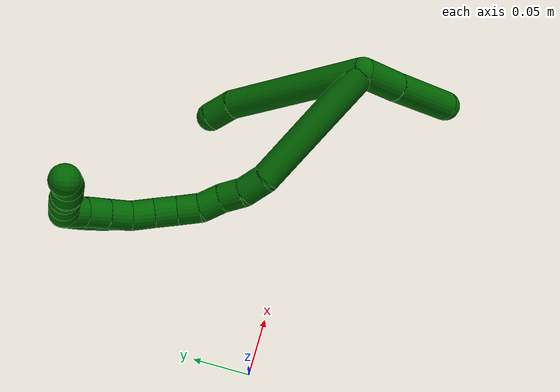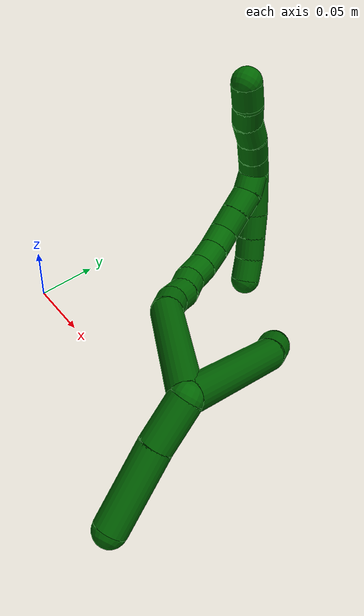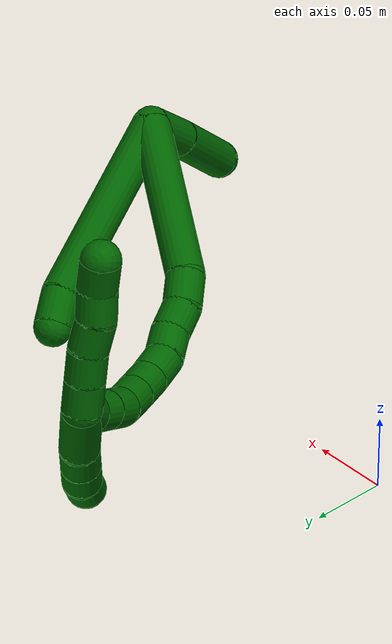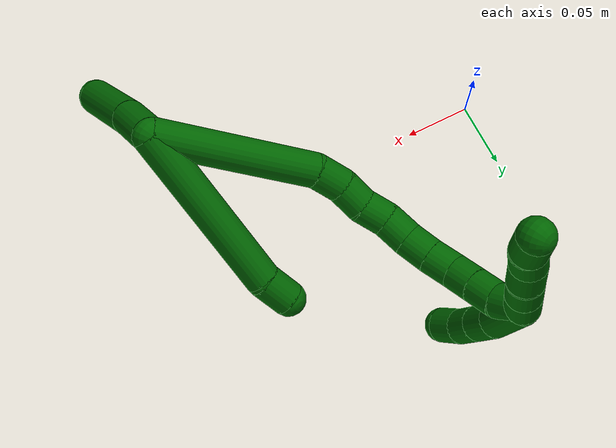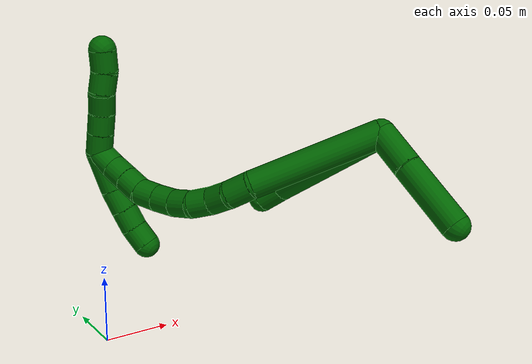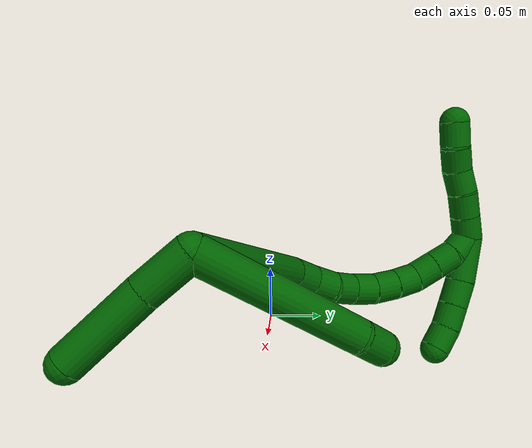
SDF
<sdf version="1.7">
 <world name="default">
  <model name="6">
   <static>0</static>
   <link name="6">
    <collision name="collision-cylinder-e_1_2_8">
     <pose>0.016337 0.050929 0.033734 -0.985772 0.261318 -0.140924</pose>
     <geometry><cylinder><radius>0.0125</radius><length>0.12647</length></cylinder></geometry>
     <surface>
      <friction><ode><mu>1.16</mu><mu2>1.16</mu2><slip1>0</slip1><slip2>0</slip2></ode></friction>
      <contact><ode><kp>1e+06</kp><kd>1</kd><max_vel>0</max_vel><min_depth>0.001</min_depth></ode></contact>
     </surface>
    </collision>
    <visual name="visual-cylinder-e_1_2_8">
     <pose>0.016337 0.050929 0.033734 -0.985772 0.261318 -0.140924</pose>
     <geometry><cylinder><radius>0.0125</radius><length>0.12647</length></cylinder></geometry>
     <material><ambient>0 0.392157 0.003922 1</ambient></material>
    </visual>
    <collision name="collision-cylinder-e_2_8_6">
     <pose>0.032847 0.112095 0.073265 -1.05551 0.014692 -0.008564</pose>
     <geometry><cylinder><radius>0.0125</radius><length>0.02353</length></cylinder></geometry>
     <surface>
      <friction><ode><mu>1.16</mu><mu2>1.16</mu2><slip1>0</slip1><slip2>0</slip2></ode></friction>
      <contact><ode><kp>1e+06</kp><kd>1</kd><max_vel>0</max_vel><min_depth>0.001</min_depth></ode></contact>
     </surface>
    </collision>
    <visual name="visual-cylinder-e_2_8_6">
     <pose>0.032847 0.112095 0.073265 -1.05551 0.014692 -0.008564</pose>
     <geometry><cylinder><radius>0.0125</radius><length>0.02353</length></cylinder></geometry>
     <material><ambient>0 0.392157 0.003922 1</ambient></material>
    </visual>
    <collision name="collision-cylinder-e_1_2_9">
     <pose>-0.002124 0.005068 -0.017887 -2.86547 -0.113761 0.777869</pose>
     <geometry><cylinder><radius>0.0125</radius><length>0.037424</length></cylinder></geometry>
     <surface>
      <friction><ode><mu>1.16</mu><mu2>1.16</mu2><slip1>0</slip1><slip2>0</slip2></ode></friction>
      <contact><ode><kp>1e+06</kp><kd>1</kd><max_vel>0</max_vel><min_depth>0.001</min_depth></ode></contact>
     </surface>
    </collision>
    <visual name="visual-cylinder-e_1_2_9">
     <pose>-0.002124 0.005068 -0.017887 -2.86547 -0.113761 0.777869</pose>
     <geometry><cylinder><radius>0.0125</radius><length>0.037424</length></cylinder></geometry>
     <material><ambient>0 0.392157 0.003922 1</ambient></material>
    </visual>
    <collision name="collision-cylinder-e_2_9_5">
     <pose>-0.00568 0.019056 -0.065729 -2.85222 -0.045791 0.311776</pose>
     <geometry><cylinder><radius>0.0125</radius><length>0.062576</length></cylinder></geometry>
     <surface>
      <friction><ode><mu>1.16</mu><mu2>1.16</mu2><slip1>0</slip1><slip2>0</slip2></ode></friction>
      <contact><ode><kp>1e+06</kp><kd>1</kd><max_vel>0</max_vel><min_depth>0.001</min_depth></ode></contact>
     </surface>
    </collision>
    <visual name="visual-cylinder-e_2_9_5">
     <pose>-0.00568 0.019056 -0.065729 -2.85222 -0.045791 0.311776</pose>
     <geometry><cylinder><radius>0.0125</radius><length>0.062576</length></cylinder></geometry>
     <material><ambient>0 0.392157 0.003922 1</ambient></material>
    </visual>
    <collision name="collision-cylinder-e_1_2_10">
     <pose>-0.024453 0.044425 0.029875 -0.978782 -0.42846 0.230728</pose>
     <geometry><cylinder><radius>0.0125</radius><length>0.117713</length></cylinder></geometry>
     <surface>
      <friction><ode><mu>1.16</mu><mu2>1.16</mu2><slip1>0</slip1><slip2>0</slip2></ode></friction>
      <contact><ode><kp>1e+06</kp><kd>1</kd><max_vel>0</max_vel><min_depth>0.001</min_depth></ode></contact>
     </surface>
    </collision>
    <visual name="visual-cylinder-e_1_2_10">
     <pose>-0.024453 0.044425 0.029875 -0.978782 -0.42846 0.230728</pose>
     <geometry><cylinder><radius>0.0125</radius><length>0.117713</length></cylinder></geometry>
     <material><ambient>0 0.392157 0.003922 1</ambient></material>
    </visual>
    <collision name="collision-cylinder-e_2_10_11">
     <pose>-0.050321 0.097992 0.065941 -0.975546 -0.127444 0.067679</pose>
     <geometry><cylinder><radius>0.0125</radius><length>0.022262</length></cylinder></geometry>
     <surface>
      <friction><ode><mu>1.16</mu><mu2>1.16</mu2><slip1>0</slip1><slip2>0</slip2></ode></friction>
      <contact><ode><kp>1e+06</kp><kd>1</kd><max_vel>0</max_vel><min_depth>0.001</min_depth></ode></contact>
     </surface>
    </collision>
    <visual name="visual-cylinder-e_2_10_11">
     <pose>-0.050321 0.097992 0.065941 -0.975546 -0.127444 0.067679</pose>
     <geometry><cylinder><radius>0.0125</radius><length>0.022262</length></cylinder></geometry>
     <material><ambient>0 0.392157 0.003922 1</ambient></material>
    </visual>
    <collision name="collision-cylinder-e_3_11_12">
     <pose>-0.050412 0.114642 0.078621 -0.857948 0.132638 -0.060737</pose>
     <geometry><cylinder><radius>0.0125</radius><length>0.020023</length></cylinder></geometry>
     <surface>
      <friction><ode><mu>1.16</mu><mu2>1.16</mu2><slip1>0</slip1><slip2>0</slip2></ode></friction>
      <contact><ode><kp>1e+06</kp><kd>1</kd><max_vel>0</max_vel><min_depth>0.001</min_depth></ode></contact>
     </surface>
    </collision>
    <visual name="visual-cylinder-e_3_11_12">
     <pose>-0.050412 0.114642 0.078621 -0.857948 0.132638 -0.060737</pose>
     <geometry><cylinder><radius>0.0125</radius><length>0.020023</length></cylinder></geometry>
     <material><ambient>0 0.392157 0.003922 1</ambient></material>
    </visual>
    <collision name="collision-cylinder-e_4_12_13">
     <pose>-0.050108 0.128961 0.092361 -0.754304 -0.102196 0.040511</pose>
     <geometry><cylinder><radius>0.0125</radius><length>0.020002</length></cylinder></geometry>
     <surface>
      <friction><ode><mu>1.16</mu><mu2>1.16</mu2><slip1>0</slip1><slip2>0</slip2></ode></friction>
      <contact><ode><kp>1e+06</kp><kd>1</kd><max_vel>0</max_vel><min_depth>0.001</min_depth></ode></contact>
     </surface>
    </collision>
    <visual name="visual-cylinder-e_4_12_13">
     <pose>-0.050108 0.128961 0.092361 -0.754304 -0.102196 0.040511</pose>
     <geometry><cylinder><radius>0.0125</radius><length>0.020002</length></cylinder></geometry>
     <material><ambient>0 0.392157 0.003922 1</ambient></material>
    </visual>
    <collision name="collision-cylinder-e_5_13_14">
     <pose>-0.049744 0.140949 0.108056 -0.549843 0.138839 -0.039219</pose>
     <geometry><cylinder><radius>0.0125</radius><length>0.02</length></cylinder></geometry>
     <surface>
      <friction><ode><mu>1.16</mu><mu2>1.16</mu2><slip1>0</slip1><slip2>0</slip2></ode></friction>
      <contact><ode><kp>1e+06</kp><kd>1</kd><max_vel>0</max_vel><min_depth>0.001</min_depth></ode></contact>
     </surface>
    </collision>
    <visual name="visual-cylinder-e_5_13_14">
     <pose>-0.049744 0.140949 0.108056 -0.549843 0.138839 -0.039219</pose>
     <geometry><cylinder><radius>0.0125</radius><length>0.02</length></cylinder></geometry>
     <material><ambient>0 0.392157 0.003922 1</ambient></material>
    </visual>
    <collision name="collision-cylinder-e_6_14_15">
     <pose>-0.047732 0.149731 0.125806 -0.369691 0.062823 -0.01175</pose>
     <geometry><cylinder><radius>0.0125</radius><length>0.02</length></cylinder></geometry>
     <surface>
      <friction><ode><mu>1.16</mu><mu2>1.16</mu2><slip1>0</slip1><slip2>0</slip2></ode></friction>
      <contact><ode><kp>1e+06</kp><kd>1</kd><max_vel>0</max_vel><min_depth>0.001</min_depth></ode></contact>
     </surface>
    </collision>
    <visual name="visual-cylinder-e_6_14_15">
     <pose>-0.047732 0.149731 0.125806 -0.369691 0.062823 -0.01175</pose>
     <geometry><cylinder><radius>0.0125</radius><length>0.02</length></cylinder></geometry>
     <material><ambient>0 0.392157 0.003922 1</ambient></material>
    </visual>
    <collision name="collision-cylinder-e_7_15_16">
     <pose>-0.047032 0.156224 0.144686 -0.292876 0.007234 -0.001067</pose>
     <geometry><cylinder><radius>0.0125</radius><length>0.02</length></cylinder></geometry>
     <surface>
      <friction><ode><mu>1.16</mu><mu2>1.16</mu2><slip1>0</slip1><slip2>0</slip2></ode></friction>
      <contact><ode><kp>1e+06</kp><kd>1</kd><max_vel>0</max_vel><min_depth>0.001</min_depth></ode></contact>
     </surface>
    </collision>
    <visual name="visual-cylinder-e_7_15_16">
     <pose>-0.047032 0.156224 0.144686 -0.292876 0.007234 -0.001067</pose>
     <geometry><cylinder><radius>0.0125</radius><length>0.02</length></cylinder></geometry>
     <material><ambient>0 0.392157 0.003922 1</ambient></material>
    </visual>
    <collision name="collision-cylinder-e_8_16_17">
     <pose>-0.046334 0.158781 0.164235 0.033102 0.06265 0.001037</pose>
     <geometry><cylinder><radius>0.0125</radius><length>0.02</length></cylinder></geometry>
     <surface>
      <friction><ode><mu>1.16</mu><mu2>1.16</mu2><slip1>0</slip1><slip2>0</slip2></ode></friction>
      <contact><ode><kp>1e+06</kp><kd>1</kd><max_vel>0</max_vel><min_depth>0.001</min_depth></ode></contact>
     </surface>
    </collision>
    <visual name="visual-cylinder-e_8_16_17">
     <pose>-0.046334 0.158781 0.164235 0.033102 0.06265 0.001037</pose>
     <geometry><cylinder><radius>0.0125</radius><length>0.02</length></cylinder></geometry>
     <material><ambient>0 0.392157 0.003922 1</ambient></material>
    </visual>
    <collision name="collision-cylinder-e_9_17_18">
     <pose>-0.045044 0.158176 0.184184 0.027493 0.066446 0.000914</pose>
     <geometry><cylinder><radius>0.0125</radius><length>0.02</length></cylinder></geometry>
     <surface>
      <friction><ode><mu>1.16</mu><mu2>1.16</mu2><slip1>0</slip1><slip2>0</slip2></ode></friction>
      <contact><ode><kp>1e+06</kp><kd>1</kd><max_vel>0</max_vel><min_depth>0.001</min_depth></ode></contact>
     </surface>
    </collision>
    <visual name="visual-cylinder-e_9_17_18">
     <pose>-0.045044 0.158176 0.184184 0.027493 0.066446 0.000914</pose>
     <geometry><cylinder><radius>0.0125</radius><length>0.02</length></cylinder></geometry>
     <material><ambient>0 0.392157 0.003922 1</ambient></material>
    </visual>
    <collision name="collision-cylinder-e_10_18_1">
     <pose>-0.046089 0.155938 0.203813 0.200701 -0.171767 -0.017337</pose>
     <geometry><cylinder><radius>0.0125</radius><length>0.02</length></cylinder></geometry>
     <surface>
      <friction><ode><mu>1.16</mu><mu2>1.16</mu2><slip1>0</slip1><slip2>0</slip2></ode></friction>
      <contact><ode><kp>1e+06</kp><kd>1</kd><max_vel>0</max_vel><min_depth>0.001</min_depth></ode></contact>
     </surface>
    </collision>
    <visual name="visual-cylinder-e_10_18_1">
     <pose>-0.046089 0.155938 0.203813 0.200701 -0.171767 -0.017337</pose>
     <geometry><cylinder><radius>0.0125</radius><length>0.02</length></cylinder></geometry>
     <material><ambient>0 0.392157 0.003922 1</ambient></material>
    </visual>
    <collision name="collision-cylinder-e_1_1_19">
     <pose>-0.050053 0.144598 0.216116 1.29552 -0.227435 -0.172413</pose>
     <geometry><cylinder><radius>0.0125</radius><length>0.02</length></cylinder></geometry>
     <surface>
      <friction><ode><mu>1.16</mu><mu2>1.16</mu2><slip1>0</slip1><slip2>0</slip2></ode></friction>
      <contact><ode><kp>1e+06</kp><kd>1</kd><max_vel>0</max_vel><min_depth>0.001</min_depth></ode></contact>
     </surface>
    </collision>
    <visual name="visual-cylinder-e_1_1_19">
     <pose>-0.050053 0.144598 0.216116 1.29552 -0.227435 -0.172413</pose>
     <geometry><cylinder><radius>0.0125</radius><length>0.02</length></cylinder></geometry>
     <material><ambient>0 0.392157 0.003922 1</ambient></material>
    </visual>
    <collision name="collision-cylinder-e_2_19_20">
     <pose>-0.054569 0.125843 0.221397 1.29715 -0.228097 -0.173207</pose>
     <geometry><cylinder><radius>0.0125</radius><length>0.02</length></cylinder></geometry>
     <surface>
      <friction><ode><mu>1.16</mu><mu2>1.16</mu2><slip1>0</slip1><slip2>0</slip2></ode></friction>
      <contact><ode><kp>1e+06</kp><kd>1</kd><max_vel>0</max_vel><min_depth>0.001</min_depth></ode></contact>
     </surface>
    </collision>
    <visual name="visual-cylinder-e_2_19_20">
     <pose>-0.054569 0.125843 0.221397 1.29715 -0.228097 -0.173207</pose>
     <geometry><cylinder><radius>0.0125</radius><length>0.02</length></cylinder></geometry>
     <material><ambient>0 0.392157 0.003922 1</ambient></material>
    </visual>
    <collision name="collision-cylinder-e_3_20_21">
     <pose>-0.060451 0.107387 0.226146 1.3417 -0.370532 -0.295314</pose>
     <geometry><cylinder><radius>0.0125</radius><length>0.02</length></cylinder></geometry>
     <surface>
      <friction><ode><mu>1.16</mu><mu2>1.16</mu2><slip1>0</slip1><slip2>0</slip2></ode></friction>
      <contact><ode><kp>1e+06</kp><kd>1</kd><max_vel>0</max_vel><min_depth>0.001</min_depth></ode></contact>
     </surface>
    </collision>
    <visual name="visual-cylinder-e_3_20_21">
     <pose>-0.060451 0.107387 0.226146 1.3417 -0.370532 -0.295314</pose>
     <geometry><cylinder><radius>0.0125</radius><length>0.02</length></cylinder></geometry>
     <material><ambient>0 0.392157 0.003922 1</ambient></material>
    </visual>
    <collision name="collision-cylinder-e_4_21_22">
     <pose>-0.065551 0.088741 0.230765 1.31499 -0.148392 -0.114659</pose>
     <geometry><cylinder><radius>0.0125</radius><length>0.02</length></cylinder></geometry>
     <surface>
      <friction><ode><mu>1.16</mu><mu2>1.16</mu2><slip1>0</slip1><slip2>0</slip2></ode></friction>
      <contact><ode><kp>1e+06</kp><kd>1</kd><max_vel>0</max_vel><min_depth>0.001</min_depth></ode></contact>
     </surface>
    </collision>
    <visual name="visual-cylinder-e_4_21_22">
     <pose>-0.065551 0.088741 0.230765 1.31499 -0.148392 -0.114659</pose>
     <geometry><cylinder><radius>0.0125</radius><length>0.02</length></cylinder></geometry>
     <material><ambient>0 0.392157 0.003922 1</ambient></material>
    </visual>
    <collision name="collision-cylinder-e_5_22_4">
     <pose>-0.070023 0.070492 0.237229 1.14268 -0.304018 -0.196327</pose>
     <geometry><cylinder><radius>0.0125</radius><length>0.02</length></cylinder></geometry>
     <surface>
      <friction><ode><mu>1.16</mu><mu2>1.16</mu2><slip1>0</slip1><slip2>0</slip2></ode></friction>
      <contact><ode><kp>1e+06</kp><kd>1</kd><max_vel>0</max_vel><min_depth>0.001</min_depth></ode></contact>
     </surface>
    </collision>
    <visual name="visual-cylinder-e_5_22_4">
     <pose>-0.070023 0.070492 0.237229 1.14268 -0.304018 -0.196327</pose>
     <geometry><cylinder><radius>0.0125</radius><length>0.02</length></cylinder></geometry>
     <material><ambient>0 0.392157 0.003922 1</ambient></material>
    </visual>
    <collision name="collision-cylinder-e_1_1_23">
     <pose>-0.04139 0.16706 0.201327 -2.31872 0.34469 -0.759178</pose>
     <geometry><cylinder><radius>0.0125</radius><length>0.037932</length></cylinder></geometry>
     <surface>
      <friction><ode><mu>1.16</mu><mu2>1.16</mu2><slip1>0</slip1><slip2>0</slip2></ode></friction>
      <contact><ode><kp>1e+06</kp><kd>1</kd><max_vel>0</max_vel><min_depth>0.001</min_depth></ode></contact>
     </surface>
    </collision>
    <visual name="visual-cylinder-e_1_1_23">
     <pose>-0.04139 0.16706 0.201327 -2.31872 0.34469 -0.759178</pose>
     <geometry><cylinder><radius>0.0125</radius><length>0.037932</length></cylinder></geometry>
     <material><ambient>0 0.392157 0.003922 1</ambient></material>
    </visual>
    <collision name="collision-cylinder-e_2_23_24">
     <pose>-0.031665 0.186556 0.181017 -2.47632 0.309057 -0.847192</pose>
     <geometry><cylinder><radius>0.0125</radius><length>0.021802</length></cylinder></geometry>
     <surface>
      <friction><ode><mu>1.16</mu><mu2>1.16</mu2><slip1>0</slip1><slip2>0</slip2></ode></friction>
      <contact><ode><kp>1e+06</kp><kd>1</kd><max_vel>0</max_vel><min_depth>0.001</min_depth></ode></contact>
     </surface>
    </collision>
    <visual name="visual-cylinder-e_2_23_24">
     <pose>-0.031665 0.186556 0.181017 -2.47632 0.309057 -0.847192</pose>
     <geometry><cylinder><radius>0.0125</radius><length>0.021802</length></cylinder></geometry>
     <material><ambient>0 0.392157 0.003922 1</ambient></material>
    </visual>
    <collision name="collision-cylinder-e_3_24_25">
     <pose>-0.025205 0.198739 0.165191 -2.49552 0.316858 -0.89058</pose>
     <geometry><cylinder><radius>0.0125</radius><length>0.020182</length></cylinder></geometry>
     <surface>
      <friction><ode><mu>1.16</mu><mu2>1.16</mu2><slip1>0</slip1><slip2>0</slip2></ode></friction>
      <contact><ode><kp>1e+06</kp><kd>1</kd><max_vel>0</max_vel><min_depth>0.001</min_depth></ode></contact>
     </surface>
    </collision>
    <visual name="visual-cylinder-e_3_24_25">
     <pose>-0.025205 0.198739 0.165191 -2.49552 0.316858 -0.89058</pose>
     <geometry><cylinder><radius>0.0125</radius><length>0.020182</length></cylinder></geometry>
     <material><ambient>0 0.392157 0.003922 1</ambient></material>
    </visual>
    <collision name="collision-cylinder-e_4_25_3">
     <pose>-0.019439 0.208514 0.148706 -2.71602 0.264166 -1.10263</pose>
     <geometry><cylinder><radius>0.0125</radius><length>0.020084</length></cylinder></geometry>
     <surface>
      <friction><ode><mu>1.16</mu><mu2>1.16</mu2><slip1>0</slip1><slip2>0</slip2></ode></friction>
      <contact><ode><kp>1e+06</kp><kd>1</kd><max_vel>0</max_vel><min_depth>0.001</min_depth></ode></contact>
     </surface>
    </collision>
    <visual name="visual-cylinder-e_4_25_3">
     <pose>-0.019439 0.208514 0.148706 -2.71602 0.264166 -1.10263</pose>
     <geometry><cylinder><radius>0.0125</radius><length>0.020084</length></cylinder></geometry>
     <material><ambient>0 0.392157 0.003922 1</ambient></material>
    </visual>
    <collision name="collision-sphere-3">
     <pose>-0.016817 0.212516 0.139877 0 -0 0</pose>
     <geometry><sphere><radius>0.0125</radius></sphere></geometry>
     <surface>
      <friction><ode><mu>1.16</mu><mu2>1.16</mu2><slip1>0</slip1><slip2>0</slip2></ode></friction>
      <contact><ode><kp>1e+06</kp><kd>1</kd><max_vel>0</max_vel><min_depth>0.001</min_depth></ode></contact>
     </surface>
    </collision>
    <visual name="visual-sphere-3">
     <pose>-0.016817 0.212516 0.139877 0 -0 0</pose>
     <geometry><sphere><radius>0.0125</radius></sphere></geometry>
     <material><ambient>0 0.392157 0.003922 1</ambient></material>
    </visual>
    <collision name="collision-sphere-25">
     <pose>-0.022061 0.204512 0.157535 0 -0 0</pose>
     <geometry><sphere><radius>0.0125</radius></sphere></geometry>
     <surface>
      <friction><ode><mu>1.16</mu><mu2>1.16</mu2><slip1>0</slip1><slip2>0</slip2></ode></friction>
      <contact><ode><kp>1e+06</kp><kd>1</kd><max_vel>0</max_vel><min_depth>0.001</min_depth></ode></contact>
     </surface>
    </collision>
    <visual name="visual-sphere-25">
     <pose>-0.022061 0.204512 0.157535 0 -0 0</pose>
     <geometry><sphere><radius>0.0125</radius></sphere></geometry>
     <material><ambient>0 0.392157 0.003922 1</ambient></material>
    </visual>
    <collision name="collision-sphere-24">
     <pose>-0.028349 0.192966 0.172847 0 -0 0</pose>
     <geometry><sphere><radius>0.0125</radius></sphere></geometry>
     <surface>
      <friction><ode><mu>1.16</mu><mu2>1.16</mu2><slip1>0</slip1><slip2>0</slip2></ode></friction>
      <contact><ode><kp>1e+06</kp><kd>1</kd><max_vel>0</max_vel><min_depth>0.001</min_depth></ode></contact>
     </surface>
    </collision>
    <visual name="visual-sphere-24">
     <pose>-0.028349 0.192966 0.172847 0 -0 0</pose>
     <geometry><sphere><radius>0.0125</radius></sphere></geometry>
     <material><ambient>0 0.392157 0.003922 1</ambient></material>
    </visual>
    <collision name="collision-sphere-23">
     <pose>-0.034981 0.180146 0.189187 0 -0 0</pose>
     <geometry><sphere><radius>0.0125</radius></sphere></geometry>
     <surface>
      <friction><ode><mu>1.16</mu><mu2>1.16</mu2><slip1>0</slip1><slip2>0</slip2></ode></friction>
      <contact><ode><kp>1e+06</kp><kd>1</kd><max_vel>0</max_vel><min_depth>0.001</min_depth></ode></contact>
     </surface>
    </collision>
    <visual name="visual-sphere-23">
     <pose>-0.034981 0.180146 0.189187 0 -0 0</pose>
     <geometry><sphere><radius>0.0125</radius></sphere></geometry>
     <material><ambient>0 0.392157 0.003922 1</ambient></material>
    </visual>
    <collision name="collision-sphere-4">
     <pose>-0.073017 0.061812 0.24119 0 -0 0</pose>
     <geometry><sphere><radius>0.0125</radius></sphere></geometry>
     <surface>
      <friction><ode><mu>1.16</mu><mu2>1.16</mu2><slip1>0</slip1><slip2>0</slip2></ode></friction>
      <contact><ode><kp>1e+06</kp><kd>1</kd><max_vel>0</max_vel><min_depth>0.001</min_depth></ode></contact>
     </surface>
    </collision>
    <visual name="visual-sphere-4">
     <pose>-0.073017 0.061812 0.24119 0 -0 0</pose>
     <geometry><sphere><radius>0.0125</radius></sphere></geometry>
     <material><ambient>0 0.392157 0.003922 1</ambient></material>
    </visual>
    <collision name="collision-sphere-22">
     <pose>-0.06703 0.079173 0.233268 0 -0 0</pose>
     <geometry><sphere><radius>0.0125</radius></sphere></geometry>
     <surface>
      <friction><ode><mu>1.16</mu><mu2>1.16</mu2><slip1>0</slip1><slip2>0</slip2></ode></friction>
      <contact><ode><kp>1e+06</kp><kd>1</kd><max_vel>0</max_vel><min_depth>0.001</min_depth></ode></contact>
     </surface>
    </collision>
    <visual name="visual-sphere-22">
     <pose>-0.06703 0.079173 0.233268 0 -0 0</pose>
     <geometry><sphere><radius>0.0125</radius></sphere></geometry>
     <material><ambient>0 0.392157 0.003922 1</ambient></material>
    </visual>
    <collision name="collision-sphere-21">
     <pose>-0.064073 0.098309 0.228263 0 -0 0</pose>
     <geometry><sphere><radius>0.0125</radius></sphere></geometry>
     <surface>
      <friction><ode><mu>1.16</mu><mu2>1.16</mu2><slip1>0</slip1><slip2>0</slip2></ode></friction>
      <contact><ode><kp>1e+06</kp><kd>1</kd><max_vel>0</max_vel><min_depth>0.001</min_depth></ode></contact>
     </surface>
    </collision>
    <visual name="visual-sphere-21">
     <pose>-0.064073 0.098309 0.228263 0 -0 0</pose>
     <geometry><sphere><radius>0.0125</radius></sphere></geometry>
     <material><ambient>0 0.392157 0.003922 1</ambient></material>
    </visual>
    <collision name="collision-sphere-20">
     <pose>-0.05683 0.116465 0.224029 0 -0 0</pose>
     <geometry><sphere><radius>0.0125</radius></sphere></geometry>
     <surface>
      <friction><ode><mu>1.16</mu><mu2>1.16</mu2><slip1>0</slip1><slip2>0</slip2></ode></friction>
      <contact><ode><kp>1e+06</kp><kd>1</kd><max_vel>0</max_vel><min_depth>0.001</min_depth></ode></contact>
     </surface>
    </collision>
    <visual name="visual-sphere-20">
     <pose>-0.05683 0.116465 0.224029 0 -0 0</pose>
     <geometry><sphere><radius>0.0125</radius></sphere></geometry>
     <material><ambient>0 0.392157 0.003922 1</ambient></material>
    </visual>
    <collision name="collision-sphere-10">
     <pose>-0.048906 0.08885 0.05975 0 -0 0</pose>
     <geometry><sphere><radius>0.0125</radius></sphere></geometry>
     <surface>
      <friction><ode><mu>1.16</mu><mu2>1.16</mu2><slip1>0</slip1><slip2>0</slip2></ode></friction>
      <contact><ode><kp>1e+06</kp><kd>1</kd><max_vel>0</max_vel><min_depth>0.001</min_depth></ode></contact>
     </surface>
    </collision>
    <visual name="visual-sphere-10">
     <pose>-0.048906 0.08885 0.05975 0 -0 0</pose>
     <geometry><sphere><radius>0.0125</radius></sphere></geometry>
     <material><ambient>0 0.392157 0.003922 1</ambient></material>
    </visual>
    <collision name="collision-sphere-5">
     <pose>-0.007113 0.027975 -0.095685 0 -0 0</pose>
     <geometry><sphere><radius>0.0125</radius></sphere></geometry>
     <surface>
      <friction><ode><mu>1.16</mu><mu2>1.16</mu2><slip1>0</slip1><slip2>0</slip2></ode></friction>
      <contact><ode><kp>1e+06</kp><kd>1</kd><max_vel>0</max_vel><min_depth>0.001</min_depth></ode></contact>
     </surface>
    </collision>
    <visual name="visual-sphere-5">
     <pose>-0.007113 0.027975 -0.095685 0 -0 0</pose>
     <geometry><sphere><radius>0.0125</radius></sphere></geometry>
     <material><ambient>0 0.392157 0.003922 1</ambient></material>
    </visual>
    <collision name="collision-sphere-6">
     <pose>0.03302 0.122331 0.079062 0 -0 0</pose>
     <geometry><sphere><radius>0.0125</radius></sphere></geometry>
     <surface>
      <friction><ode><mu>1.16</mu><mu2>1.16</mu2><slip1>0</slip1><slip2>0</slip2></ode></friction>
      <contact><ode><kp>1e+06</kp><kd>1</kd><max_vel>0</max_vel><min_depth>0.001</min_depth></ode></contact>
     </surface>
    </collision>
    <visual name="visual-sphere-6">
     <pose>0.03302 0.122331 0.079062 0 -0 0</pose>
     <geometry><sphere><radius>0.0125</radius></sphere></geometry>
     <material><ambient>0 0.392157 0.003922 1</ambient></material>
    </visual>
    <collision name="collision-sphere-9">
     <pose>-0.004248 0.010137 -0.035773 0 -0 0</pose>
     <geometry><sphere><radius>0.0125</radius></sphere></geometry>
     <surface>
      <friction><ode><mu>1.16</mu><mu2>1.16</mu2><slip1>0</slip1><slip2>0</slip2></ode></friction>
      <contact><ode><kp>1e+06</kp><kd>1</kd><max_vel>0</max_vel><min_depth>0.001</min_depth></ode></contact>
     </surface>
    </collision>
    <visual name="visual-sphere-9">
     <pose>-0.004248 0.010137 -0.035773 0 -0 0</pose>
     <geometry><sphere><radius>0.0125</radius></sphere></geometry>
     <material><ambient>0 0.392157 0.003922 1</ambient></material>
    </visual>
    <collision name="collision-sphere-2">
     <geometry><sphere><radius>0.0125</radius></sphere></geometry>
     <surface>
      <friction><ode><mu>1.16</mu><mu2>1.16</mu2><slip1>0</slip1><slip2>0</slip2></ode></friction>
      <contact><ode><kp>1e+06</kp><kd>1</kd><max_vel>0</max_vel><min_depth>0.001</min_depth></ode></contact>
     </surface>
    </collision>
    <visual name="visual-sphere-2">
     <geometry><sphere><radius>0.0125</radius></sphere></geometry>
     <material><ambient>0 0.392157 0.003922 1</ambient></material>
    </visual>
    <collision name="collision-sphere-19">
     <pose>-0.052308 0.135222 0.218764 0 -0 0</pose>
     <geometry><sphere><radius>0.0125</radius></sphere></geometry>
     <surface>
      <friction><ode><mu>1.16</mu><mu2>1.16</mu2><slip1>0</slip1><slip2>0</slip2></ode></friction>
      <contact><ode><kp>1e+06</kp><kd>1</kd><max_vel>0</max_vel><min_depth>0.001</min_depth></ode></contact>
     </surface>
    </collision>
    <visual name="visual-sphere-19">
     <pose>-0.052308 0.135222 0.218764 0 -0 0</pose>
     <geometry><sphere><radius>0.0125</radius></sphere></geometry>
     <material><ambient>0 0.392157 0.003922 1</ambient></material>
    </visual>
    <collision name="collision-sphere-8">
     <pose>0.032674 0.101858 0.067468 0 -0 0</pose>
     <geometry><sphere><radius>0.0125</radius></sphere></geometry>
     <surface>
      <friction><ode><mu>1.16</mu><mu2>1.16</mu2><slip1>0</slip1><slip2>0</slip2></ode></friction>
      <contact><ode><kp>1e+06</kp><kd>1</kd><max_vel>0</max_vel><min_depth>0.001</min_depth></ode></contact>
     </surface>
    </collision>
    <visual name="visual-sphere-8">
     <pose>0.032674 0.101858 0.067468 0 -0 0</pose>
     <geometry><sphere><radius>0.0125</radius></sphere></geometry>
     <material><ambient>0 0.392157 0.003922 1</ambient></material>
    </visual>
    <collision name="collision-sphere-11">
     <pose>-0.051736 0.107134 0.072132 0 -0 0</pose>
     <geometry><sphere><radius>0.0125</radius></sphere></geometry>
     <surface>
      <friction><ode><mu>1.16</mu><mu2>1.16</mu2><slip1>0</slip1><slip2>0</slip2></ode></friction>
      <contact><ode><kp>1e+06</kp><kd>1</kd><max_vel>0</max_vel><min_depth>0.001</min_depth></ode></contact>
     </surface>
    </collision>
    <visual name="visual-sphere-11">
     <pose>-0.051736 0.107134 0.072132 0 -0 0</pose>
     <geometry><sphere><radius>0.0125</radius></sphere></geometry>
     <material><ambient>0 0.392157 0.003922 1</ambient></material>
    </visual>
    <collision name="collision-sphere-12">
     <pose>-0.049088 0.122149 0.085111 0 -0 0</pose>
     <geometry><sphere><radius>0.0125</radius></sphere></geometry>
     <surface>
      <friction><ode><mu>1.16</mu><mu2>1.16</mu2><slip1>0</slip1><slip2>0</slip2></ode></friction>
      <contact><ode><kp>1e+06</kp><kd>1</kd><max_vel>0</max_vel><min_depth>0.001</min_depth></ode></contact>
     </surface>
    </collision>
    <visual name="visual-sphere-12">
     <pose>-0.049088 0.122149 0.085111 0 -0 0</pose>
     <geometry><sphere><radius>0.0125</radius></sphere></geometry>
     <material><ambient>0 0.392157 0.003922 1</ambient></material>
    </visual>
    <collision name="collision-sphere-13">
     <pose>-0.051128 0.135774 0.099611 0 -0 0</pose>
     <geometry><sphere><radius>0.0125</radius></sphere></geometry>
     <surface>
      <friction><ode><mu>1.16</mu><mu2>1.16</mu2><slip1>0</slip1><slip2>0</slip2></ode></friction>
      <contact><ode><kp>1e+06</kp><kd>1</kd><max_vel>0</max_vel><min_depth>0.001</min_depth></ode></contact>
     </surface>
    </collision>
    <visual name="visual-sphere-13">
     <pose>-0.051128 0.135774 0.099611 0 -0 0</pose>
     <geometry><sphere><radius>0.0125</radius></sphere></geometry>
     <material><ambient>0 0.392157 0.003922 1</ambient></material>
    </visual>
    <collision name="collision-sphere-14">
     <pose>-0.04836 0.146125 0.1165 0 -0 0</pose>
     <geometry><sphere><radius>0.0125</radius></sphere></geometry>
     <surface>
      <friction><ode><mu>1.16</mu><mu2>1.16</mu2><slip1>0</slip1><slip2>0</slip2></ode></friction>
      <contact><ode><kp>1e+06</kp><kd>1</kd><max_vel>0</max_vel><min_depth>0.001</min_depth></ode></contact>
     </surface>
    </collision>
    <visual name="visual-sphere-14">
     <pose>-0.04836 0.146125 0.1165 0 -0 0</pose>
     <geometry><sphere><radius>0.0125</radius></sphere></geometry>
     <material><ambient>0 0.392157 0.003922 1</ambient></material>
    </visual>
    <collision name="collision-sphere-15">
     <pose>-0.047105 0.153337 0.135112 0 -0 0</pose>
     <geometry><sphere><radius>0.0125</radius></sphere></geometry>
     <surface>
      <friction><ode><mu>1.16</mu><mu2>1.16</mu2><slip1>0</slip1><slip2>0</slip2></ode></friction>
      <contact><ode><kp>1e+06</kp><kd>1</kd><max_vel>0</max_vel><min_depth>0.001</min_depth></ode></contact>
     </surface>
    </collision>
    <visual name="visual-sphere-15">
     <pose>-0.047105 0.153337 0.135112 0 -0 0</pose>
     <geometry><sphere><radius>0.0125</radius></sphere></geometry>
     <material><ambient>0 0.392157 0.003922 1</ambient></material>
    </visual>
    <collision name="collision-sphere-16">
     <pose>-0.04696 0.159111 0.15426 0 -0 0</pose>
     <geometry><sphere><radius>0.0125</radius></sphere></geometry>
     <surface>
      <friction><ode><mu>1.16</mu><mu2>1.16</mu2><slip1>0</slip1><slip2>0</slip2></ode></friction>
      <contact><ode><kp>1e+06</kp><kd>1</kd><max_vel>0</max_vel><min_depth>0.001</min_depth></ode></contact>
     </surface>
    </collision>
    <visual name="visual-sphere-16">
     <pose>-0.04696 0.159111 0.15426 0 -0 0</pose>
     <geometry><sphere><radius>0.0125</radius></sphere></geometry>
     <material><ambient>0 0.392157 0.003922 1</ambient></material>
    </visual>
    <collision name="collision-sphere-17">
     <pose>-0.045708 0.15845 0.17421 0 -0 0</pose>
     <geometry><sphere><radius>0.0125</radius></sphere></geometry>
     <surface>
      <friction><ode><mu>1.16</mu><mu2>1.16</mu2><slip1>0</slip1><slip2>0</slip2></ode></friction>
      <contact><ode><kp>1e+06</kp><kd>1</kd><max_vel>0</max_vel><min_depth>0.001</min_depth></ode></contact>
     </surface>
    </collision>
    <visual name="visual-sphere-17">
     <pose>-0.045708 0.15845 0.17421 0 -0 0</pose>
     <geometry><sphere><radius>0.0125</radius></sphere></geometry>
     <material><ambient>0 0.392157 0.003922 1</ambient></material>
    </visual>
    <collision name="collision-sphere-18">
     <pose>-0.04438 0.157902 0.194158 0 -0 0</pose>
     <geometry><sphere><radius>0.0125</radius></sphere></geometry>
     <surface>
      <friction><ode><mu>1.16</mu><mu2>1.16</mu2><slip1>0</slip1><slip2>0</slip2></ode></friction>
      <contact><ode><kp>1e+06</kp><kd>1</kd><max_vel>0</max_vel><min_depth>0.001</min_depth></ode></contact>
     </surface>
    </collision>
    <visual name="visual-sphere-18">
     <pose>-0.04438 0.157902 0.194158 0 -0 0</pose>
     <geometry><sphere><radius>0.0125</radius></sphere></geometry>
     <material><ambient>0 0.392157 0.003922 1</ambient></material>
    </visual>
    <collision name="collision-sphere-1">
     <pose>-0.047798 0.153973 0.213468 0 -0 0</pose>
     <geometry><sphere><radius>0.0125</radius></sphere></geometry>
     <surface>
      <friction><ode><mu>1.16</mu><mu2>1.16</mu2><slip1>0</slip1><slip2>0</slip2></ode></friction>
      <contact><ode><kp>1e+06</kp><kd>1</kd><max_vel>0</max_vel><min_depth>0.001</min_depth></ode></contact>
     </surface>
    </collision>
    <visual name="visual-sphere-1">
     <pose>-0.047798 0.153973 0.213468 0 -0 0</pose>
     <geometry><sphere><radius>0.0125</radius></sphere></geometry>
     <material><ambient>0 0.392157 0.003922 1</ambient></material>
    </visual>
    <inertial>
     <pose>-0.024558 0.093982 0.091689 0 -0 0</pose>
     <mass>0.75</mass>
     <inertia>
      <ixx>0.000352</ixx>
      <ixy>0</ixy>
      <ixz>0</ixz>
      <iyy>0.000203</iyy>
      <iyz>0</iyz>
      <izz>-0.000235</izz>
     </inertia>
    </inertial>
   </link>
   <pose>0.241491 -0.02823 0.137197 -1.11605 0.186871 0.483123</pose>
  </model>
 </world>
</sdf>
